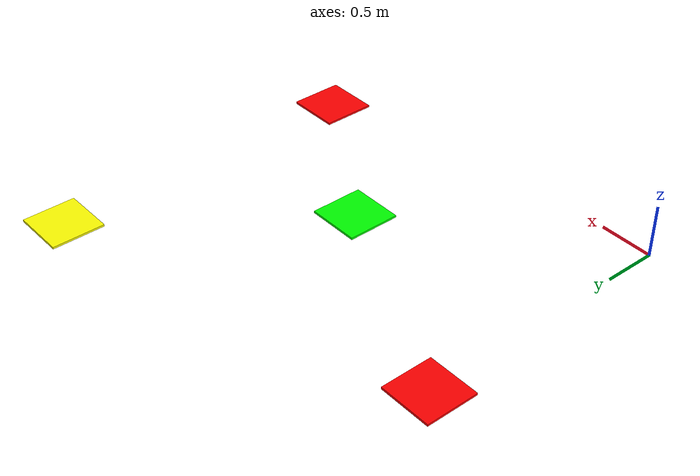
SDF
<sdf version="1.5">
 <world name="default">
  <include><uri>model://sun</uri></include>
  <include><name>red_0</name><uri>model://red</uri><pose>0 2.5 0 0 0 0</pose></include>
  <include><name>red_1</name><uri>model://red</uri><pose>3.5 0.5 0 0 0 0</pose></include>
  <include><name>green_0</name><uri>model://green</uri><pose>2 1.5 0 0 0 0</pose></include>
  <include><name>yellow_0</name><uri>model://yellow</uri><pose>3.5 3.5 0 0 0 0</pose></include>
  <scene>
   <ambient>0.8 0.8 0.8 1</ambient>
   <background>0.8 0.9 1 1</background>
   <shadows>false</shadows>
   <grid>false</grid>
   <origin_visual>false</origin_visual>
  </scene>
  <physics default="0" name="default_physics" type="ode">
   <gravity>0 0 -9.8066</gravity>
   <ode>
    <solver>
     <type>quick</type>
     <iters>10</iters>
     <sor>1.3</sor>
     <use_dynamic_moi_rescaling>0</use_dynamic_moi_rescaling>
    </solver>
    <constraints>
     <cfm>0</cfm>
     <erp>0.2</erp>
     <contact_max_correcting_vel>100</contact_max_correcting_vel>
     <contact_surface_layer>0.001</contact_surface_layer>
    </constraints>
   </ode>
   <max_step_size>0.004</max_step_size>
   <real_time_factor>1</real_time_factor>
   <real_time_update_rate>250</real_time_update_rate>
   <magnetic_field>6.0e-6 2.3e-5 -4.2e-5</magnetic_field>
  </physics>
 </world>
</sdf>

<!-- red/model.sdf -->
<sdf version='1.6'>
  <model name='red'>
    <link name='link'>
      <inertial>
        <mass>1</mass>
        <inertia>
          <ixx>0.166667</ixx>
          <ixy>0</ixy>
          <ixz>0</ixz>
          <iyy>0.166667</iyy>
          <iyz>0</iyz>
          <izz>0.166667</izz>
        </inertia>
        <pose frame=''>0 0 0 0 -0 0</pose>
      </inertial>
      <self_collide>0</self_collide>
      <enable_wind>0</enable_wind>
      <kinematic>0</kinematic>
      <pose frame=''>0 0 0 0 -0 0</pose>
      <gravity>1</gravity>
      <visual name='visual'>
        <geometry>
          <box>
            <size>0.5 0.5 0.02</size>
          </box>
        </geometry>
        <material>
          <script>
            <name>Gazebo/Grey</name>
            <uri>file://media/materials/scripts/gazebo.material</uri>
          </script>
          <shader type='pixel'>
            <normal_map>__default__</normal_map>
          </shader>
          <ambient>1 0 0 1</ambient>
          <diffuse>1 0 0 1</diffuse>
          <specular>0.01 0.01 0.01 1</specular>
          <emissive>0 0 0 1</emissive>
        </material>
        <pose frame=''>0 0 0 0 -0 0</pose>
        <transparency>0</transparency>
        <cast_shadows>1</cast_shadows>
      </visual>
      <collision name='collision'>
        <laser_retro>0</laser_retro>
        <max_contacts>10</max_contacts>
        <pose frame=''>0 0 0 0 -0 0</pose>
        <geometry>
          <box>
            <size>0.5 0.5 0.02</size>
          </box>
        </geometry>
        <surface>
          <friction>
            <ode>
              <mu>1</mu>
              <mu2>1</mu2>
              <fdir1>0 0 0</fdir1>
              <slip1>0</slip1>
              <slip2>0</slip2>
            </ode>
            <torsional>
              <coefficient>1</coefficient>
              <patch_radius>0</patch_radius>
              <surface_radius>0</surface_radius>
              <use_patch_radius>1</use_patch_radius>
              <ode>
                <slip>0</slip>
              </ode>
            </torsional>
          </friction>
          <bounce>
            <restitution_coefficient>0</restitution_coefficient>
            <threshold>1e+06</threshold>
          </bounce>
          <contact>
            <collide_without_contact>0</collide_without_contact>
            <collide_without_contact_bitmask>1</collide_without_contact_bitmask>
            <collide_bitmask>1</collide_bitmask>
            <ode>
              <soft_cfm>0</soft_cfm>
              <soft_erp>0.2</soft_erp>
              <kp>1e+13</kp>
              <kd>1</kd>
              <max_vel>0.01</max_vel>
              <min_depth>0</min_depth>
            </ode>
            <bullet>
              <split_impulse>1</split_impulse>
              <split_impulse_penetration_threshold>-0.01</split_impulse_penetration_threshold>
              <soft_cfm>0</soft_cfm>
              <soft_erp>0.2</soft_erp>
              <kp>1e+13</kp>
              <kd>1</kd>
            </bullet>
          </contact>
        </surface>
      </collision>
    </link>
    <static>1</static>
    <allow_auto_disable>1</allow_auto_disable>
  </model>
</sdf>

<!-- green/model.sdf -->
<sdf version='1.6'>
  <model name='green'>
    <link name='link'>
      <inertial>
        <mass>1</mass>
        <inertia>
          <ixx>0.166667</ixx>
          <ixy>0</ixy>
          <ixz>0</ixz>
          <iyy>0.166667</iyy>
          <iyz>0</iyz>
          <izz>0.166667</izz>
        </inertia>
        <pose frame=''>0 0 0 0 -0 0</pose>
      </inertial>
      <self_collide>0</self_collide>
      <enable_wind>0</enable_wind>
      <kinematic>0</kinematic>
      <pose frame=''>0 0 0 0 -0 0</pose>
      <gravity>1</gravity>
      <visual name='visual'>
        <geometry>
          <box>
            <size>0.5 0.5 0.02</size>
          </box>
        </geometry>
        <material>
          <script>
            <name>Gazebo/Grey</name>
            <uri>file://media/materials/scripts/gazebo.material</uri>
          </script>
          <shader type='pixel'>
            <normal_map>__default__</normal_map>
          </shader>
          <ambient>0 1 0 1</ambient>
          <diffuse>0 1 0 1</diffuse>
          <specular>0.01 0.01 0.01 1</specular>
          <emissive>0 0 0 1</emissive>
        </material>
        <pose frame=''>0 0 0 0 -0 0</pose>
        <transparency>0</transparency>
        <cast_shadows>1</cast_shadows>
      </visual>
      <collision name='collision'>
        <laser_retro>0</laser_retro>
        <max_contacts>10</max_contacts>
        <pose frame=''>0 0 0 0 -0 0</pose>
        <geometry>
          <box>
            <size>0.5 0.5 0.02</size>
          </box>
        </geometry>
        <surface>
          <friction>
            <ode>
              <mu>1</mu>
              <mu2>1</mu2>
              <fdir1>0 0 0</fdir1>
              <slip1>0</slip1>
              <slip2>0</slip2>
            </ode>
            <torsional>
              <coefficient>1</coefficient>
              <patch_radius>0</patch_radius>
              <surface_radius>0</surface_radius>
              <use_patch_radius>1</use_patch_radius>
              <ode>
                <slip>0</slip>
              </ode>
            </torsional>
          </friction>
          <bounce>
            <restitution_coefficient>0</restitution_coefficient>
            <threshold>1e+06</threshold>
          </bounce>
          <contact>
            <collide_without_contact>0</collide_without_contact>
            <collide_without_contact_bitmask>1</collide_without_contact_bitmask>
            <collide_bitmask>1</collide_bitmask>
            <ode>
              <soft_cfm>0</soft_cfm>
              <soft_erp>0.2</soft_erp>
              <kp>1e+13</kp>
              <kd>1</kd>
              <max_vel>0.01</max_vel>
              <min_depth>0</min_depth>
            </ode>
            <bullet>
              <split_impulse>1</split_impulse>
              <split_impulse_penetration_threshold>-0.01</split_impulse_penetration_threshold>
              <soft_cfm>0</soft_cfm>
              <soft_erp>0.2</soft_erp>
              <kp>1e+13</kp>
              <kd>1</kd>
            </bullet>
          </contact>
        </surface>
      </collision>
    </link>
    <static>1</static>
    <allow_auto_disable>1</allow_auto_disable>
  </model>
</sdf>

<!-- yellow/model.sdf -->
<sdf version='1.6'>
  <model name='yellow'>
    <link name='link'>
      <inertial>
        <mass>1</mass>
        <inertia>
          <ixx>0.166667</ixx>
          <ixy>0</ixy>
          <ixz>0</ixz>
          <iyy>0.166667</iyy>
          <iyz>0</iyz>
          <izz>0.166667</izz>
        </inertia>
        <pose frame=''>0 0 0 0 -0 0</pose>
      </inertial>
      <self_collide>0</self_collide>
      <enable_wind>0</enable_wind>
      <kinematic>0</kinematic>
      <pose frame=''>0 0 0 0 -0 0</pose>
      <gravity>1</gravity>
      <visual name='visual'>
        <geometry>
          <box>
            <size>0.5 0.5 0.02</size>
          </box>
        </geometry>
        <material>
          <script>
            <name>Gazebo/Grey</name>
            <uri>file://media/materials/scripts/gazebo.material</uri>
          </script>
          <shader type='pixel'>
            <normal_map>__default__</normal_map>
          </shader>
          <ambient>1 1 0 1</ambient>
          <diffuse>1 1 0 1</diffuse>
          <specular>0.01 0.01 0.01 1</specular>
          <emissive>0 0 0 1</emissive>
        </material>
        <pose frame=''>0 0 0 0 -0 0</pose>
        <transparency>0</transparency>
        <cast_shadows>1</cast_shadows>
      </visual>
      <collision name='collision'>
        <laser_retro>0</laser_retro>
        <max_contacts>10</max_contacts>
        <pose frame=''>0 0 0 0 -0 0</pose>
        <geometry>
          <box>
            <size>0.5 0.5 0.02</size>
          </box>
        </geometry>
        <surface>
          <friction>
            <ode>
              <mu>1</mu>
              <mu2>1</mu2>
              <fdir1>0 0 0</fdir1>
              <slip1>0</slip1>
              <slip2>0</slip2>
            </ode>
            <torsional>
              <coefficient>1</coefficient>
              <patch_radius>0</patch_radius>
              <surface_radius>0</surface_radius>
              <use_patch_radius>1</use_patch_radius>
              <ode>
                <slip>0</slip>
              </ode>
            </torsional>
          </friction>
          <bounce>
            <restitution_coefficient>0</restitution_coefficient>
            <threshold>1e+06</threshold>
          </bounce>
          <contact>
            <collide_without_contact>0</collide_without_contact>
            <collide_without_contact_bitmask>1</collide_without_contact_bitmask>
            <collide_bitmask>1</collide_bitmask>
            <ode>
              <soft_cfm>0</soft_cfm>
              <soft_erp>0.2</soft_erp>
              <kp>1e+13</kp>
              <kd>1</kd>
              <max_vel>0.01</max_vel>
              <min_depth>0</min_depth>
            </ode>
            <bullet>
              <split_impulse>1</split_impulse>
              <split_impulse_penetration_threshold>-0.01</split_impulse_penetration_threshold>
              <soft_cfm>0</soft_cfm>
              <soft_erp>0.2</soft_erp>
              <kp>1e+13</kp>
              <kd>1</kd>
            </bullet>
          </contact>
        </surface>
      </collision>
    </link>
    <static>1</static>
    <allow_auto_disable>1</allow_auto_disable>
  </model>
</sdf>
